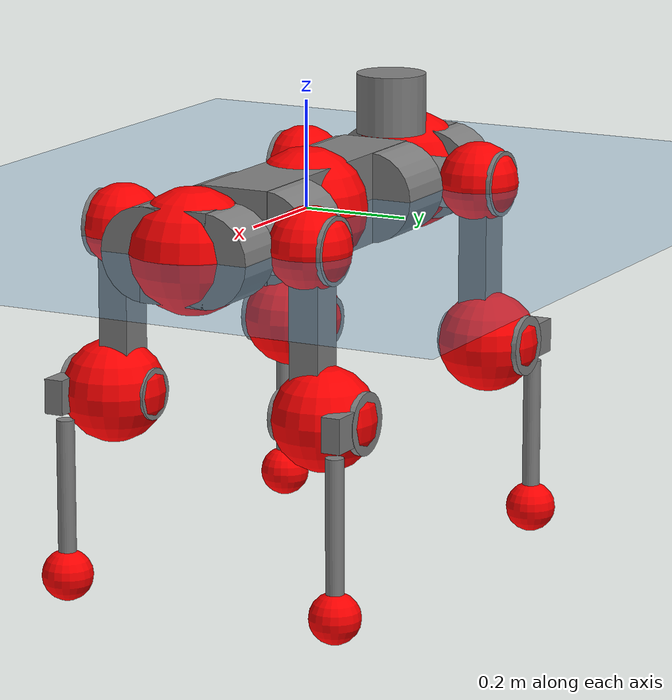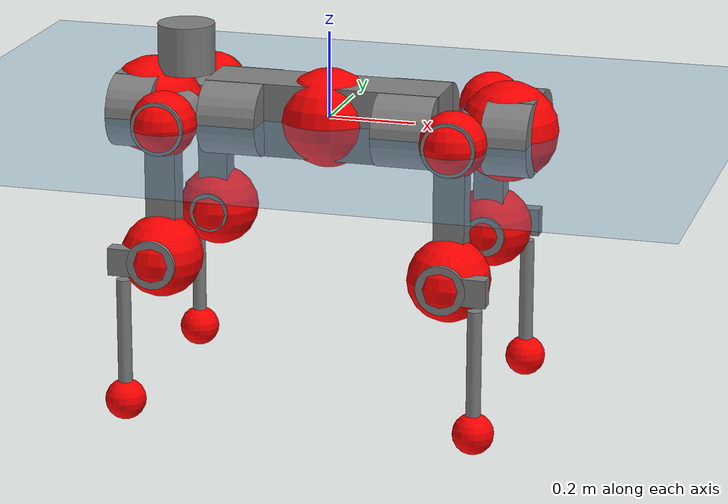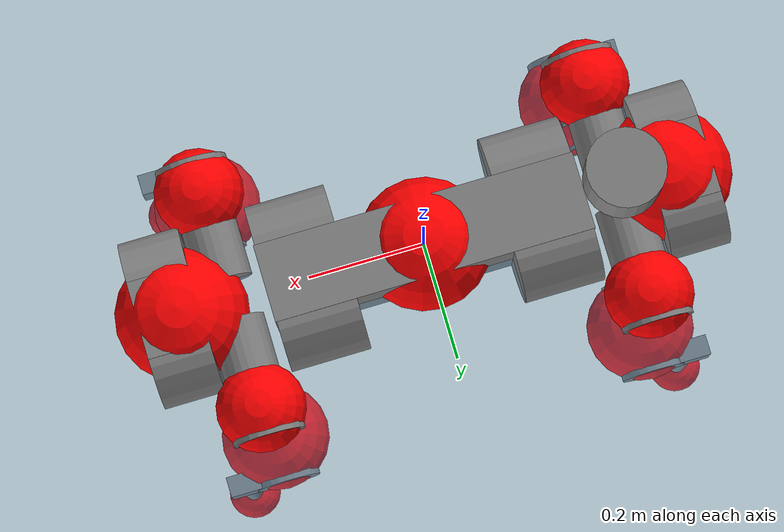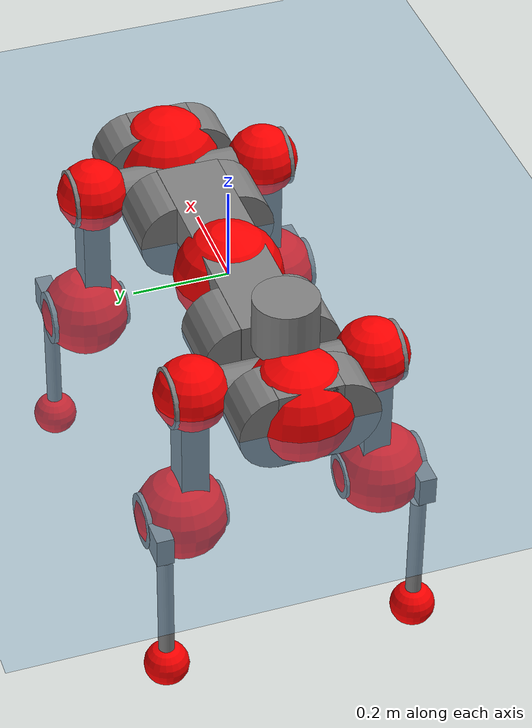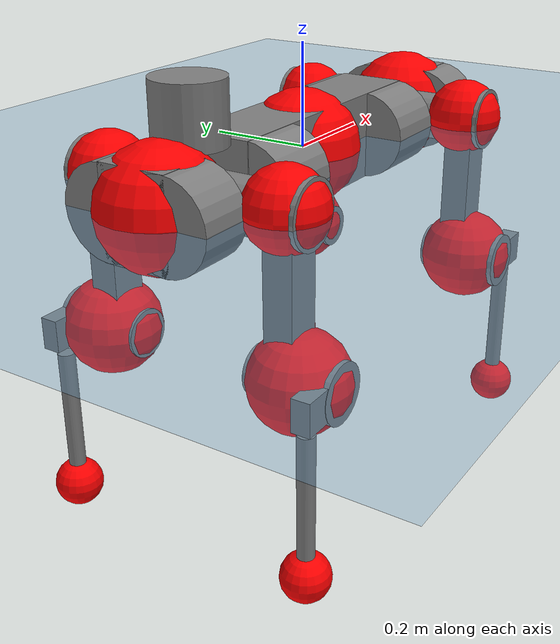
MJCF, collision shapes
<mujoco model="anymal_c">
  <compiler angle="radian" assetdir="assets" balanceinertia="true" inertiafromgeom="false"/>

  <option timestep="0.005" density="1.2" viscosity="2e-05"/>

  <size nkey="1"/>

  <visual>
    <quality shadowsize="8192"/>
    <map shadowclip="0.5"/>
  </visual>

  <default>
    <default class="/">
      <material specular="0" shininess="0.25"/>
      <geom contype="0" conaffinity="0" group="1" solref="-1000 -80"/>
      <site size="0.01 0.005 0.005" group="5"/>
      <general forcelimited="true" forcerange="-80 80" biastype="affine" gainprm="80" biasprm="0 -80 -2"/>
      <default class="anymal_c">
        <joint armature="0.01" damping="0.01" frictionloss="0.1"/>
        <default class="visual">
          <geom type="mesh" group="2"/>
          <default class="visual_zflip"/>
        </default>
        <default class="collision">
          <geom type="cylinder" group="3"/>
          <default class="foot">
            <geom size="0.03 0 0" type="sphere" condim="6" priority="1" friction="0.8 0.02 0.01" solimp="0.015 1 0.03"/>
          </default>
        </default>
      </default>
      <default class="reward_collision_sphere">
        <geom group="5" rgba="1 0 0 1"/>
      </default>
    </default>
  </default>

  <asset>
    <texture type="skybox" colorspace="auto" name="//unnamed_texture_0" builtin="gradient" rgb1="0.95 0.95 0.95" rgb2="0.95 0.95 0.95" width="100" height="600"/>
    <texture type="2d" colorspace="auto" name="texplane" builtin="checker" rgb1="0.345 0.575 0.748" rgb2="0.345 0.575 0.748" markrgb="1 1 1" width="512" height="512"/>
    <texture type="2d" colorspace="linear" name="base" file="base.png"/>
    <texture type="2d" colorspace="linear" name="top_shell" file="top_shell.png"/>
    <texture type="2d" colorspace="linear" name="bottom_shell" file="bottom_shell.png"/>
    <texture type="2d" colorspace="linear" name="remote" file="remote.png"/>
    <texture type="2d" colorspace="linear" name="hatch" file="hatch.png"/>
    <texture type="2d" colorspace="linear" name="handle" file="handle.png"/>
    <texture type="2d" colorspace="linear" name="face" file="face.png"/>
    <texture type="2d" colorspace="linear" name="battery" file="battery.png"/>
    <texture type="2d" colorspace="linear" name="lidar_cage" file="lidar_cage.png"/>
    <texture type="2d" colorspace="linear" name="depth_camera" file="depth_camera.png"/>
    <texture type="2d" colorspace="linear" name="wide_angle_camera" file="wide_angle_camera.png"/>
    <texture type="2d" colorspace="linear" name="lidar" file="lidar.png"/>
    <texture type="2d" colorspace="linear" name="drive" file="drive.png"/>
    <texture type="2d" colorspace="linear" name="hip_l" file="hip_l.png"/>
    <texture type="2d" colorspace="linear" name="shank_l" file="shank_l.png"/>
    <texture type="2d" colorspace="linear" name="foot" file="foot.png"/>
    <texture type="2d" colorspace="linear" name="thigh" file="thigh.png"/>
    <texture type="2d" colorspace="linear" name="shank_r" file="shank_r.png"/>
    <texture type="2d" colorspace="linear" name="hip_r" file="hip_r.png"/>
    <material name="MatPlane" class="/" texture="texplane" texuniform="true" texrepeat="2 2" specular="0.9" shininess="0.5"/>
    <material name="black_plastic" class="/" rgba="0.007 0.007 0.007 1"/>
    <material name="green" class="/" rgba="0.052 0.178 0.033 1"/>
    <material name="red" class="/" rgba="0.178 0.006 0.005 1"/>
    <material name="yellow" class="/" rgba="0.178 0.119 0.006 1"/>
    <material name="lwl" class="/" rgba="0.8 0.8 0.8 1"/>
    <material name="base" class="/" texture="base"/>
    <material name="top_shell" class="/" texture="top_shell"/>
    <material name="bottom_shell" class="/" texture="bottom_shell"/>
    <material name="hip_l" class="/" texture="hip_l"/>
    <material name="thigh" class="/" texture="thigh"/>
    <material name="shank_l" class="/" texture="shank_l"/>
    <material name="foot" class="/" texture="foot"/>
    <material name="hip_r" class="/" texture="hip_r"/>
    <material name="shank" class="/" texture="shank_r"/>
    <material name="hatch" class="/" texture="hatch"/>
    <material name="remote" class="/" texture="remote"/>
    <material name="handle" class="/" texture="handle"/>
    <material name="face" class="/" texture="face"/>
    <material name="depth_camera" class="/" texture="depth_camera"/>
    <material name="wide_angle_camera" class="/" texture="wide_angle_camera"/>
    <material name="battery" class="/" texture="battery"/>
    <material name="lidar_cage" class="/" texture="lidar_cage"/>
    <material name="lidar" class="/" texture="lidar"/>
    <material name="drive" class="/" texture="drive"/>
    <mesh name="base_0" class="/" file="base_0.obj"/>
    <mesh name="base_1" class="/" file="base_1.obj"/>
    <mesh name="base_2" class="/" file="base_2.obj"/>
    <mesh name="base_3" class="/" file="base_3.obj"/>
    <mesh name="base_4" class="/" file="base_4.obj"/>
    <mesh name="base_5" class="/" file="base_5.obj"/>
    <mesh name="top_shell" class="/" file="top_shell.obj"/>
    <mesh name="bottom_shell" class="/" file="bottom_shell.obj"/>
    <mesh name="remote" class="/" file="remote.obj"/>
    <mesh name="handle" class="/" file="handle.obj"/>
    <mesh name="face" class="/" file="face.obj"/>
    <mesh name="wide_angle_camera" class="/" file="wide_angle_camera.obj"/>
    <mesh name="depth_camera" class="/" file="depth_camera.obj"/>
    <mesh name="battery" class="/" file="battery.obj"/>
    <mesh name="lidar_cage" class="/" file="lidar_cage.obj"/>
    <mesh name="lidar" class="/" file="lidar.obj"/>
    <mesh name="drive" class="/" file="drive.obj"/>
    <mesh name="hip_l" class="/" file="hip_l.obj"/>
    <mesh name="thigh" class="/" file="thigh.obj"/>
    <mesh name="shank_l" class="/" file="shank_l.obj"/>
    <mesh name="foot" class="/" file="foot.obj"/>
    <mesh name="hip_r" class="/" file="hip_r.obj"/>
    <mesh name="hatch" class="/" file="hatch.obj"/>
    <mesh name="shank_r" class="/" file="shank_r.obj"/>
  </asset>

  <worldbody>
    <geom name="floor" class="/" size="100 100 0.125" type="plane" group="0" material="MatPlane"/>
    <light name="toplight_shadow" class="/" pos="0 0 5" dir="0.0990148 0.0990148 -0.990148" type="directional" ambient="0.04 0.04 0.04" diffuse="0.55 0.55 0.55" specular="0.12 0.12 0.12"/>
    <light name="toplight_fill" class="/" pos="0 0 5" dir="0.0990148 0.0990148 -0.990148" type="directional" castshadow="false" ambient="0.04 0.04 0.04" diffuse="0.3 0.3 0.3" specular="0.08 0.08 0.08"/>
    <body name="trunk" childclass="anymal_c" pos="-0.00153118 -0.000354061 -0.000120461" quat="1 0.000492216 6.35123e-05 9.75329e-05">
      <inertial pos="0.00178228 0.000156496 0.0527714" quat="0.504003 0.506036 0.492548 0.497298" mass="16.1126" diaginertia="0.469738 0.259315 0.304154"/>
      <joint name="//unnamed_joint_0" type="free" armature="0" damping="0" frictionloss="0"/>
      <geom name="//unnamed_geom_1" class="visual" material="green" mesh="base_0"/>
      <geom name="//unnamed_geom_2" class="visual" material="yellow" mesh="base_1"/>
      <geom name="//unnamed_geom_3" class="visual" material="red" mesh="base_2"/>
      <geom name="//unnamed_geom_4" class="visual" material="black_plastic" mesh="base_3"/>
      <geom name="//unnamed_geom_5" class="visual" material="lwl" mesh="base_4"/>
      <geom name="//unnamed_geom_6" class="visual" material="base" mesh="base_5"/>
      <geom name="trunk_1" class="collision" size="0.274427 0.066241 0.085167" type="box"/>
      <geom name="trunk_2" class="collision" size="0.085167 0.0686068" pos="0.203499 0.0587006 0" quat="0.707107 0 0.707107 0"/>
      <geom name="trunk_3" class="collision" size="0.085167 0.0686068" pos="-0.203499 0.0587006 0" quat="0.707107 0 0.707107 0"/>
      <geom name="trunk_4" class="collision" size="0.085167 0.0686068" pos="0.203499 -0.0587006 0" quat="0.707107 0 0.707107 0"/>
      <geom name="trunk_5" class="collision" size="0.085167 0.0686068" pos="-0.203499 -0.0587006 0" quat="0.707107 0 0.707107 0"/>
      <geom name="//unnamed_geom_12" class="visual" material="top_shell" mesh="top_shell"/>
      <geom name="//unnamed_geom_13" class="visual" material="bottom_shell" mesh="bottom_shell"/>
      <geom name="//unnamed_geom_14" class="visual" material="remote" mesh="remote"/>
      <geom name="//unnamed_geom_15" class="visual" material="handle" mesh="handle"/>
      <geom name="//unnamed_geom_16" class="visual" pos="0.387818 0 0" quat="1 0 0 0" material="face" mesh="face"/>
      <geom name="trunk_6" class="collision" size="0.0520465 0.066241 0.085167" pos="0.439278 0 0" type="box"/>
      <geom name="//unnamed_geom_18" class="collision" size="0.085167 0.0520465" pos="0.439278 0.0587006 0" quat="0.707107 0 0.707107 0"/>
      <geom name="//unnamed_geom_19" class="collision" size="0.085167 0.0520465" pos="0.439278 -0.0587006 0" quat="0.707107 0 0.707107 0"/>
      <geom name="//unnamed_geom_20" class="visual" pos="0.431938 0 -0.0320699" quat="0.965926 0 0.258819 0" material="depth_camera" mesh="depth_camera"/>
      <geom name="//unnamed_geom_21" class="visual" pos="0.479978 0 0.0159385" material="wide_angle_camera" mesh="wide_angle_camera"/>
      <geom name="//unnamed_geom_22" class="visual_zflip" pos="-0.387818 0 0" quat="0 0 0 1" material="face" mesh="face"/>
      <geom name="trunk_7" class="collision" size="0.0520465 0.066241 0.085167" pos="-0.439278 0 0" quat="0 0 0 1" type="box"/>
      <geom name="//unnamed_geom_24" class="collision" size="0.085167 0.0520465" pos="-0.439278 -0.0587006 0" quat="0 -0.707107 0 0.707107"/>
      <geom name="//unnamed_geom_25" class="collision" size="0.085167 0.0520465" pos="-0.439278 0.0587006 0" quat="0 -0.707107 0 0.707107"/>
      <geom name="//unnamed_geom_26" class="visual" pos="-0.431938 0 -0.0320699" quat="0 -0.258819 0 0.965926" material="depth_camera" mesh="depth_camera"/>
      <geom name="//unnamed_geom_27" class="visual_zflip" pos="-0.479978 0 0.0159385" quat="0 0 0 1" material="wide_angle_camera" mesh="wide_angle_camera"/>
      <geom name="//unnamed_geom_28" class="visual" material="battery" mesh="battery"/>
      <geom name="//unnamed_geom_29" class="visual" pos="0 0.0628497 0.0299484" quat="0.683013 -0.183013 0.183013 0.683013" material="depth_camera" mesh="depth_camera"/>
      <geom name="//unnamed_geom_30" class="visual" pos="0 -0.0628497 0.0299484" quat="0.683013 0.183013 0.183013 -0.683013" material="depth_camera" mesh="depth_camera"/>
      <geom name="//unnamed_geom_31" class="visual" pos="-0.340569 0 0.0782549" quat="1 0 0 0" material="lidar_cage" mesh="lidar_cage"/>
      <geom name="trunk_8" class="collision" size="0.066241 0.056778" pos="-0.340569 0 0.142137"/>
      <geom name="//unnamed_geom_33" class="visual" pos="-0.340569 -3.8128e-05 0.151399" quat="0.707107 0 0 -0.707107" material="lidar" mesh="lidar"/>
      <geom name="//unnamed_geom_34" class="visual" pos="0.280595 0.0872926 -3.90048e-09" quat="0.258819 0.965926 0 0" material="drive" mesh="drive"/>
      <geom name="//unnamed_geom_35" class="visual" pos="0.280595 -0.0872926 3.90048e-09" quat="0.258819 -0.965926 0 0" material="drive" mesh="drive"/>
      <geom name="//unnamed_geom_36" class="visual" pos="-0.280595 0.0872926 3.90048e-09" quat="0 0 0.965926 -0.258819" material="drive" mesh="drive"/>
      <geom name="//unnamed_geom_37" class="visual" pos="-0.280595 -0.0872926 -3.90048e-09" quat="0 0 -0.965926 -0.258819" material="drive" mesh="drive"/>
      <geom name="//unnamed_geom_38" class="visual" pos="0.108533 0 0.0777226" quat="1 0 0 0" material="hatch" mesh="hatch"/>
      <geom name="//unnamed_geom_39" class="reward_collision_sphere" size="0.113556"/>
      <geom name="//unnamed_geom_40" class="reward_collision_sphere" size="0.113556" pos="0.421033 0 0"/>
      <geom name="//unnamed_geom_41" class="reward_collision_sphere" size="0.113556" pos="-0.421033 0 0"/>
      <site name="imu" pos="0.235127 -0.0061272 0.0533002" size="0.009463"/>
      <camera name="track" pos="0 -1.67716 0" quat="0.707107 0.707107 0 0" mode="trackcom"/>
      <camera name="ego_camera" pos="0.421033 0 -0.0425877" quat="-0.5 -0.5 0.5 0.5"/>
      <body name="LF_HIP" pos="0.281225 0.0881729 -0.000697732" quat="0.257439 0.966294 -3.34393e-05 0.000111805">
        <inertial pos="0.0529158 -0.0120518 -0.00765036" quat="-0.130024 0.704121 -0.135055 0.684885" mass="2.43217" diaginertia="0.00434071 0.00209953 0.00465793"/>
        <joint name="LF_HAA" pos="0 0 0" axis="0.999979 0.00581658 -0.00274645" range="-0.668689 0.493043" armature="0.0103562" damping="0.0110424" frictionloss="0.0968868"/>
        <geom name="//unnamed_geom_42" class="visual" pos="0 -0.000229448 3.76866e-05" quat="0.258819 -0.965926 0 0" material="hip_l" mesh="hip_l"/>
        <geom name="//unnamed_geom_43" class="visual" pos="0.0560442 -0.066712 -0.0401886" quat="0.183013 -0.683013 0.683013 0.183013" material="drive" mesh="drive"/>
        <geom name="//unnamed_geom_44" class="collision" size="0.047315 0.066241" pos="0.0560442 -0.0100292 -0.00735171" quat="-0.353553 -0.612372 0.612372 -0.353553"/>
        <body name="LF_THIGH" pos="0.05647 -0.0613683 -0.043822" quat="0.183039 -0.683171 0.682834 0.183063">
          <inertial pos="0.0286777 -0.00246328 -0.264155" quat="0.993086 -0.000148989 -0.0821237 0.0838776" mass="2.64264" diaginertia="0.0216574 0.0124148 0.00570487"/>
          <joint name="LF_HFE" pos="0 0 0" axis="0.999997 0.000142753 0.00240464" range="-3.13932 3.19165" armature="0.0093779" damping="0" frictionloss="0.0950217"/>
          <geom name="//unnamed_geom_45" class="visual" pos="0.00193089 3.04264e-06 0" quat="0.707107 0 0 -0.707107" material="thigh" mesh="thigh"/>
          <geom name="//unnamed_geom_46" class="collision" size="0.0615095 0.037852" pos="0.0374251 0 0" quat="0.5 0.5 -0.5 -0.5"/>
          <geom name="//unnamed_geom_47" class="collision" size="0.0354863 0.028389 0.133726" pos="0.0280689 0 -0.150456" quat="0.707107 0 0 -0.707107" type="box"/>
          <geom name="//unnamed_geom_48" class="visual" pos="0.0938436 0 -0.303438" quat="1 0 0 0" material="drive" mesh="drive"/>
          <geom name="//unnamed_geom_49" class="collision" size="0.047315 0.066241" pos="0.0283496 0 -0.303438" quat="0.707107 0 0.707107 0"/>
          <geom name="//unnamed_geom_50" class="reward_collision_sphere" size="0.075704" pos="0.0233907 0 0"/>
          <body name="LF_SHANK" pos="0.0963377 0.00210399 -0.30197" quat="1 -1.48683e-05 -4.20626e-06 6.42214e-06">
            <inertial pos="0.0060744 -0.0517724 -0.0846104" quat="0.992958 -0.115595 -0.000773848 -0.0259329" mass="0.514947" diaginertia="0.00742015 0.0038827 0.0015361"/>
            <joint name="LF_KFE" pos="0 0 0" axis="0.999999 -0.00101872 0.000536602" range="-3.11652 3.09154" armature="0.00938456" damping="0.00974332" frictionloss="0.0952005"/>
            <geom name="//unnamed_geom_51" class="visual" pos="0.000629622 0.00335718 0" quat="0.707107 0 0 -0.707107" material="shank_l" mesh="shank_l"/>
            <geom name="LF_kfe_act" class="collision" size="0.056778 0.018926" pos="0.0187126 0 0" quat="0.5 0.5 -0.5 -0.5"/>
            <geom name="//unnamed_geom_53" class="collision" size="0.0544113 0.0319376 0.0179797" pos="0.0187126 -0.0482175 0" quat="0.5 0.5 -0.5 -0.5" type="box"/>
            <geom name="//unnamed_geom_54" class="visual" pos="0.0122098 -0.0726712 -0.359834" quat="0.382683 0 0 -0.92388" material="foot" mesh="foot"/>
            <geom name="LF_calf" class="collision" size="0.0165603 0.133667" pos="0.01221 -0.0737531 -0.179917" quat="0.707107 0 0 -0.707107"/>
            <geom name="LF_foot" class="foot" size="0.0270018" pos="0.01221 -0.0737531 -0.335879" quat="0.707107 0 0 -0.707107"/>
            <geom name="//unnamed_geom_57" class="reward_collision_sphere" size="0.09463" pos="-0.0467814 0 0"/>
            <geom name="//unnamed_geom_58" class="reward_collision_sphere" size="0.047315" pos="0.01221 -0.0737531 -0.335879"/>
            <site name="LF_foot" class="foot" pos="0.01221 -0.0737531 -0.335879" quat="0.707107 0 0 -0.707107" size="0.009463"/>
          </body>
        </body>
      </body>
      <body name="RF_HIP" pos="0.281432 -0.0876248 0.00277063" quat="0.258906 -0.965903 9.46885e-05 0.00011178">
        <inertial pos="0.0541654 0.0121155 -0.00883896" quat="0.123922 0.679969 0.122498 0.712236" mass="2.43219" diaginertia="0.00432471 0.00209367 0.00460494"/>
        <joint name="RF_HAA" pos="0 0 0" axis="0.999999 -0.000430094 0.00127274" range="-0.460441 0.732279" armature="0.0095315" damping="0.00855756" frictionloss="0.0903251"/>
        <geom name="//unnamed_geom_59" class="visual" pos="0 0.000229446 3.76865e-05" quat="0.258819 0.965926 0 0" material="hip_r" mesh="hip_r"/>
        <geom name="//unnamed_geom_60" class="visual" pos="0.0560442 0.066712 -0.0401886" quat="0.183013 0.683013 0.683013 -0.183013" material="drive" mesh="drive"/>
        <geom name="//unnamed_geom_61" class="collision" size="0.047315 0.066241" pos="0.0560442 0.0100292 -0.00735171" quat="-0.353553 0.612372 0.612372 0.353553"/>
        <body name="RF_THIGH" pos="0.0563904 0.0616757 -0.0469853" quat="0.18279 0.683267 0.682862 -0.182851">
          <inertial pos="0.0286582 -0.000100863 -0.263964" quat="0.99304 -0.00340851 -0.0694417 0.0950639" mass="2.65288" diaginertia="0.0223202 0.012798 0.00591276"/>
          <joint name="RF_HFE" pos="0 0 0" axis="1 0.000194304 -0.000574071" stiffness="0.00568951" range="-3.19456 3.17959" armature="0.00857892" damping="0.0101606" frictionloss="0.090029"/>
          <geom name="//unnamed_geom_62" class="visual" pos="0.00193089 3.04264e-06 0" quat="0.707107 0 0 -0.707107" material="thigh" mesh="thigh"/>
          <geom name="//unnamed_geom_63" class="collision" size="0.0615095 0.037852" pos="0.0374251 0 0" quat="0.5 0.5 0.5 0.5"/>
          <geom name="//unnamed_geom_64" class="collision" size="0.0354863 0.028389 0.133726" pos="0.0280689 0 -0.150456" quat="0.707107 0 0 0.707107" type="box"/>
          <geom name="//unnamed_geom_65" class="visual" pos="0.0938436 0 -0.303438" quat="1 0 0 0" material="drive" mesh="drive"/>
          <geom name="//unnamed_geom_66" class="collision" size="0.047315 0.066241" pos="0.0283496 0 -0.303438" quat="0.707107 0 0.707107 0"/>
          <geom name="//unnamed_geom_67" class="reward_collision_sphere" size="0.075704" pos="0.0233907 0 0"/>
          <body name="RF_SHANK" pos="0.0940855 0.000495772 -0.304153" quat="1 5.24925e-07 -4.24882e-08 -3.08159e-07">
            <inertial pos="0.00435818 0.051886 -0.083134" quat="0.992801 0.116731 -0.000132526 0.0268503" mass="0.471006" diaginertia="0.00700542 0.00382863 0.00143519"/>
            <joint name="RF_KFE" pos="0 0 0" axis="0.999997 0.000417027 -0.00228634" range="-3.12524 3.13021" armature="0.0102983" damping="0.0093635" frictionloss="0.095074"/>
            <geom name="//unnamed_geom_68" class="visual" pos="0.000629619 -0.00335717 0" quat="0.707107 0 0 0.707107" material="shank" mesh="shank_r"/>
            <geom name="RF_kfe_act" class="collision" size="0.056778 0.018926" pos="0.0187126 0 0" quat="0.5 0.5 0.5 0.5"/>
            <geom name="//unnamed_geom_70" class="collision" size="0.0544113 0.0319376 0.0179797" pos="0.0187126 0.0482175 0" quat="0.5 0.5 0.5 0.5" type="box"/>
            <geom name="//unnamed_geom_71" class="visual" pos="0.0122101 0.0726712 -0.359834" quat="0.382683 0 0 0.92388" material="foot" mesh="foot"/>
            <geom name="RF_calf" class="collision" size="0.0165603 0.133667" pos="0.01221 0.0737531 -0.179917" quat="0.707107 0 0 0.707107"/>
            <geom name="RF_foot" class="foot" size="0.0280309" pos="0.01221 0.0737531 -0.335879" quat="0.707107 0 0 0.707107"/>
            <geom name="//unnamed_geom_74" class="reward_collision_sphere" size="0.09463" pos="-0.0467814 0 0"/>
            <geom name="//unnamed_geom_75" class="reward_collision_sphere" size="0.047315" pos="0.01221 0.0737531 -0.335879"/>
            <site name="RF_foot" class="foot" pos="0.01221 0.0737531 -0.335879" quat="0.707107 0 0 0.707107" size="0.009463"/>
          </body>
        </body>
      </body>
      <body name="LH_HIP" pos="-0.279832 0.0877786 -0.00166635" quat="-8.00791e-05 -4.57519e-05 0.965906 -0.258892">
        <inertial pos="0.0529299 0.0122879 -0.0114219" quat="0.134118 0.678967 0.128278 0.710325" mass="2.43331" diaginertia="0.00432888 0.00201064 0.00452993"/>
        <joint name="LH_HAA" pos="0 0 0" axis="1 0.000735483 0.000382121" range="-0.440546 0.773029" armature="0.00952896" damping="0.0046414" frictionloss="0.106467"/>
        <geom name="//unnamed_geom_76" class="visual" pos="0 0.000229446 3.76865e-05" quat="-0.258819 -0.965926 0 0" material="hip_r" mesh="hip_r"/>
        <geom name="//unnamed_geom_77" class="visual" pos="0.0560442 0.066712 -0.0401886" quat="0.183013 0.683013 0.683013 -0.183013" material="drive" mesh="drive"/>
        <geom name="//unnamed_geom_78" class="collision" size="0.047315 0.066241" pos="0.0560442 0.0100292 -0.00735171" quat="-0.353553 0.612372 0.612372 0.353553"/>
        <body name="LH_THIGH" pos="0.055926 0.0616822 -0.046162" quat="0.182848 0.683037 0.683056 -0.182925">
          <inertial pos="0.0264814 -0.000434759 -0.264013" quat="0.993816 -0.0127899 -0.0739851 0.0818072" mass="2.60978" diaginertia="0.0208504 0.0123722 0.0055086"/>
          <joint name="LH_HFE" pos="0 0 0" axis="0.999902 -0.00587811 -0.0127333" range="-3.19195 3.15856" armature="0.00912388" damping="0.00330156" frictionloss="0.0946741"/>
          <geom name="//unnamed_geom_79" class="visual" pos="0.00193089 3.04264e-06 0" quat="0.707107 0 0 -0.707107" material="thigh" mesh="thigh"/>
          <geom name="//unnamed_geom_80" class="collision" size="0.0615095 0.037852" pos="0.0374251 0 0" quat="0.5 0.5 -0.5 -0.5"/>
          <geom name="//unnamed_geom_81" class="collision" size="0.0354863 0.028389 0.133726" pos="0.0280689 0 -0.150456" quat="0.707107 0 0 -0.707107" type="box"/>
          <geom name="//unnamed_geom_82" class="visual" pos="0.0938436 0 -0.303438" quat="1 0 0 0" material="drive" mesh="drive"/>
          <geom name="//unnamed_geom_83" class="collision" size="0.047315 0.066241" pos="0.0283496 0 -0.303438" quat="0.707107 0 0.707107 0"/>
          <geom name="//unnamed_geom_84" class="reward_collision_sphere" size="0.075704" pos="0.0233907 0 0"/>
          <body name="LH_SHANK" pos="0.0933518 -0.00121459 -0.305376" quat="1 0.000271738 0.000121201 -0.000266113">
            <inertial pos="0.00565522 0.050404 -0.0846997" quat="0.994012 0.107454 -0.00034815 0.0198478" mass="0.486412" diaginertia="0.00726715 0.00379222 0.00154367"/>
            <joint name="LH_KFE" pos="0 0 0" axis="0.999986 0.00306794 -0.00439621" range="-3.16404 3.14222" armature="0.00949755" damping="0.00560041" frictionloss="0.0977789"/>
            <geom name="//unnamed_geom_85" class="visual" pos="0.000629619 -0.00335717 0" quat="-0.707107 0 0 -0.707107" material="shank" mesh="shank_r"/>
            <geom name="LH_kfe_act" class="collision" size="0.056778 0.018926" pos="0.0187126 0 0" quat="0.5 0.5 -0.5 -0.5"/>
            <geom name="//unnamed_geom_87" class="collision" size="0.0544113 0.0319376 0.0179797" pos="0.0187126 0.0482175 0" quat="0.5 0.5 -0.5 -0.5" type="box"/>
            <geom name="//unnamed_geom_88" class="visual" pos="0.0122101 0.0726712 -0.359834" quat="-0.382683 0 0 -0.92388" material="foot" mesh="foot"/>
            <geom name="LH_calf" class="collision" size="0.0165603 0.133667" pos="0.01221 0.0737531 -0.179917" quat="0.707107 0 0 -0.707107"/>
            <geom name="LH_foot" class="foot" size="0.0318306" pos="0.01221 0.0737531 -0.335879" quat="0.707107 0 0 -0.707107"/>
            <geom name="//unnamed_geom_91" class="reward_collision_sphere" size="0.09463" pos="-0.0467814 0 0"/>
            <geom name="//unnamed_geom_92" class="reward_collision_sphere" size="0.047315" pos="0.01221 0.0737531 -0.335879"/>
            <site name="LH_foot" class="foot" pos="0.01221 0.0737531 -0.335879" quat="0.707107 0 0 -0.707107" size="0.009463"/>
          </body>
        </body>
      </body>
      <body name="RH_HIP" pos="-0.280548 -0.0861077 0.000877567" quat="-0.000324056 0.00032133 -0.965887 -0.258962">
        <inertial pos="0.053159 -0.0104971 -0.0106359" quat="-0.12801 0.709792 -0.135255 0.679349" mass="2.26855" diaginertia="0.00409273 0.00199238 0.00434807"/>
        <joint name="RH_HAA" pos="0 0 0" axis="0.999984 0.00160841 -0.00536484" range="-0.739311 0.451597" armature="0.00924995" damping="0" frictionloss="0.0908043"/>
        <geom name="//unnamed_geom_93" class="visual" pos="0 -0.000229448 3.76866e-05" quat="-0.258819 0.965926 0 0" material="hip_l" mesh="hip_l"/>
        <geom name="//unnamed_geom_94" class="visual" pos="0.0560442 -0.066712 -0.0401886" quat="-0.183013 0.683013 -0.683013 -0.183013" material="drive" mesh="drive"/>
        <geom name="//unnamed_geom_95" class="collision" size="0.047315 0.066241" pos="0.0560442 -0.0100292 -0.00735171" quat="0.353553 0.612372 -0.612372 0.353553"/>
        <body name="RH_THIGH" pos="0.0549757 -0.0603501 -0.0421238" quat="-0.182948 0.682833 -0.683161 -0.183193">
          <inertial pos="0.0283021 0.00143966 -0.261451" quat="0.993195 -0.00595557 -0.0808617 0.083604" mass="2.46477" diaginertia="0.0210484 0.0120284 0.00571622"/>
          <joint name="RH_HFE" pos="0 0 0" axis="0.999993 0.00308562 -0.0021443" stiffness="0.00487045" range="-3.19245 3.1936" armature="0.00967157" damping="0.00718767" frictionloss="0.0843602"/>
          <geom name="//unnamed_geom_96" class="visual" pos="0.00193089 3.04264e-06 0" quat="0.707107 0 0 -0.707107" material="thigh" mesh="thigh"/>
          <geom name="//unnamed_geom_97" class="collision" size="0.0615095 0.037852" pos="0.0374251 0 0" quat="0.5 0.5 0.5 0.5"/>
          <geom name="//unnamed_geom_98" class="collision" size="0.0354863 0.028389 0.133726" pos="0.0280689 0 -0.150456" quat="0.707107 0 0 0.707107" type="box"/>
          <geom name="//unnamed_geom_99" class="visual" pos="0.0938436 0 -0.303438" quat="1 0 0 0" material="drive" mesh="drive"/>
          <geom name="//unnamed_geom_100" class="collision" size="0.047315 0.066241" pos="0.0283496 0 -0.303438" quat="0.707107 0 0.707107 0"/>
          <geom name="//unnamed_geom_101" class="reward_collision_sphere" size="0.075704" pos="0.0233907 0 0"/>
          <body name="RH_SHANK" pos="0.0958736 0.000167649 -0.302452" quat="1 -0.000159432 0.000489483 -1.66309e-06">
            <inertial pos="0.00437433 -0.0512191 -0.0858004" quat="0.993116 -0.11461 0.000335581 -0.0242075" mass="0.479946" diaginertia="0.00725702 0.00375512 0.00151728"/>
            <joint name="RH_KFE" pos="0 0 0" axis="0.999987 -0.00466823 -0.00215085" range="-3.13212 3.14773" armature="0.00952326" damping="0" frictionloss="0.0946169"/>
            <geom name="//unnamed_geom_102" class="visual" pos="0.000629622 0.00335718 0" quat="0.707107 0 0 -0.707107" material="shank_l" mesh="shank_l"/>
            <geom name="RH_kfe_act" class="collision" size="0.056778 0.018926" pos="0.0187126 0 0" quat="0.5 0.5 0.5 0.5"/>
            <geom name="//unnamed_geom_104" class="collision" size="0.0544113 0.0319376 0.0179797" pos="0.0187126 -0.0482175 0" quat="0.5 0.5 0.5 0.5" type="box"/>
            <geom name="//unnamed_geom_105" class="visual" pos="0.0122098 -0.0726712 -0.359834" quat="0.382683 0 0 -0.92388" material="foot" mesh="foot"/>
            <geom name="RH_calf" class="collision" size="0.0165603 0.133667" pos="0.01221 -0.0737531 -0.179917" quat="0.707107 0 0 0.707107"/>
            <geom name="RH_foot" class="foot" size="0.0294279" pos="0.01221 -0.0737531 -0.335879" quat="0.707107 0 0 0.707107"/>
            <geom name="//unnamed_geom_108" class="reward_collision_sphere" size="0.09463" pos="-0.0467814 0 0"/>
            <geom name="//unnamed_geom_109" class="reward_collision_sphere" size="0.047315" pos="0.01221 -0.0737531 -0.335879"/>
            <site name="RH_foot" class="foot" pos="0.01221 -0.0737531 -0.335879" quat="0.707107 0 0 0.707107" size="0.009463"/>
          </body>
        </body>
      </body>
    </body>
  </worldbody>

  <contact>
    <pair class="/" geom1="floor" geom2="LF_foot" name="//unnamed_contact_0"/>
    <pair class="/" geom1="floor" geom2="RF_foot" name="//unnamed_contact_1"/>
    <pair class="/" geom1="floor" geom2="LH_foot" name="//unnamed_contact_2"/>
    <pair class="/" geom1="floor" geom2="RH_foot" name="//unnamed_contact_3"/>
  </contact>

  <actuator>
    <general name="LF_HAA" class="/" joint="LF_HAA" forcerange="-72.9132 72.9132" gainprm="75.1992" biasprm="0 -75.1992 -2.00002"/>
    <general name="LF_HFE" class="/" joint="LF_HFE" forcerange="-82.3749 82.3749" gainprm="75.1992" biasprm="0 -75.1992 -2.00002"/>
    <general name="LF_KFE" class="/" joint="LF_KFE" forcerange="-68.8479 68.8479" gainprm="75.1992" biasprm="0 -75.1992 -2.00002"/>
    <general name="RF_HAA" class="/" joint="RF_HAA" forcerange="-76.1412 76.1412" gainprm="75.1992" biasprm="0 -75.1992 -2.00002"/>
    <general name="RF_HFE" class="/" joint="RF_HFE" forcerange="-80.523 80.523" gainprm="75.1992" biasprm="0 -75.1992 -2.00002"/>
    <general name="RF_KFE" class="/" joint="RF_KFE" forcerange="-82.9808 82.9808" gainprm="75.1992" biasprm="0 -75.1992 -2.00002"/>
    <general name="LH_HAA" class="/" joint="LH_HAA" forcerange="-83.3655 83.3655" gainprm="75.1992" biasprm="0 -75.1992 -2.00002"/>
    <general name="LH_HFE" class="/" joint="LH_HFE" forcerange="-77.1008 77.1008" gainprm="75.1992" biasprm="0 -75.1992 -2.00002"/>
    <general name="LH_KFE" class="/" joint="LH_KFE" forcerange="-75.9923 75.9923" gainprm="75.1992" biasprm="0 -75.1992 -2.00002"/>
    <general name="RH_HAA" class="/" joint="RH_HAA" forcerange="-76.0919 76.0919" gainprm="75.1992" biasprm="0 -75.1992 -2.00002"/>
    <general name="RH_HFE" class="/" joint="RH_HFE" forcerange="-68.4912 68.4912" gainprm="75.1992" biasprm="0 -75.1992 -2.00002"/>
    <general name="RH_KFE" class="/" joint="RH_KFE" forcerange="-70.0466 70.0466" gainprm="75.1992" biasprm="0 -75.1992 -2.00002"/>
  </actuator>

  <sensor>
    <gyro site="imu" name="imu_angular_velocity"/>
    <velocimeter site="imu" name="imu_linear_velocity"/>
    <framelinvel objtype="site" objname="LF_foot" name="LF_foot_global_linear_velocity"/>
    <framelinvel objtype="site" objname="RF_foot" name="RF_foot_global_linear_velocity"/>
    <framelinvel objtype="site" objname="LH_foot" name="LH_foot_global_linear_velocity"/>
    <framelinvel objtype="site" objname="RH_foot" name="RH_foot_global_linear_velocity"/>
  </sensor>

  <keyframe>
    <key name="home" qpos="0 0 0.55 1 0 0 0 0 0.4 -0.8 0 -0.4 0.8 0 -0.4 0.8 0 0.4 -0.8"/>
  </keyframe>
</mujoco>
